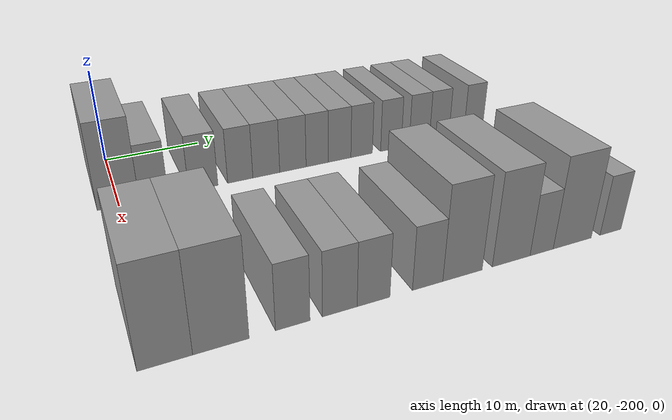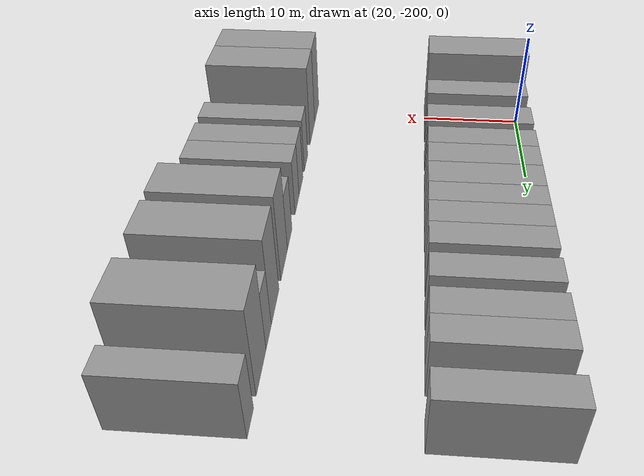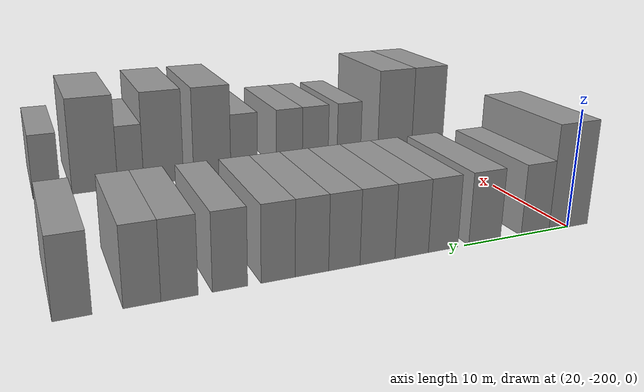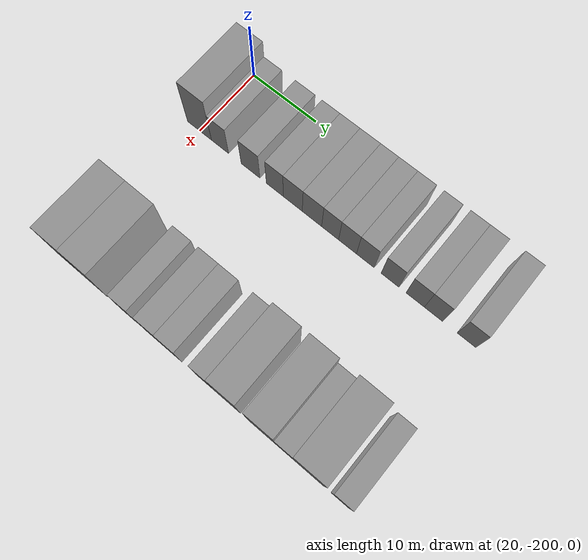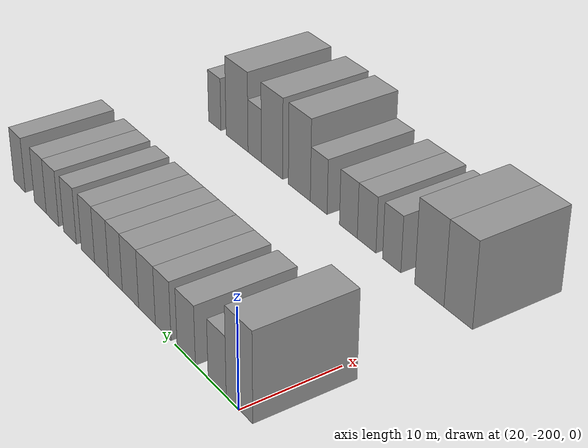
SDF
<sdf version="1.6">
 <world name="default">
  <model name="building_1">
   <static>1</static>
   <pose>25.0000 -200.0431 0 0.000000 0.000000 0.000000</pose>
   <link name="link">
    <pose>0 0 4.50 0 0 0</pose>
    <collision name="collision"><geometry><box><size>10.0000 3.9137 9.0000</size></box></geometry></collision>
    <visual name="visual">
     <cast_shadows>0</cast_shadows>
     <geometry><box><size>10.0000 3.9137 9.0000</size></box></geometry>
     <material>
      <script>
       <uri>model://grey_wall/materials/scripts</uri>
       <uri>model://grey_wall/materials/textures</uri>
       <name>vrc/grey_wall</name>
      </script>
     </material>
    </visual>
   </link>
  </model>
  <model name="building_2">
   <static>1</static>
   <pose>25.0000 -196.7073 0 0.000000 0.000000 0.000000</pose>
   <link name="link">
    <pose>0 0 3.00 0 0 0</pose>
    <collision name="collision"><geometry><box><size>10.0000 2.7580 6.0000</size></box></geometry></collision>
    <visual name="visual">
     <cast_shadows>0</cast_shadows>
     <geometry><box><size>10.0000 2.7580 6.0000</size></box></geometry>
     <material>
      <script>
       <uri>model://grey_wall/materials/scripts</uri>
       <uri>model://grey_wall/materials/textures</uri>
       <name>vrc/grey_wall</name>
      </script>
     </material>
    </visual>
   </link>
  </model>
  <model name="building_3">
   <static>1</static>
   <pose>25.0000 -191.8505 0 0.000000 0.000000 0.000000</pose>
   <link name="link">
    <pose>0 0 3.00 0 0 0</pose>
    <collision name="collision"><geometry><box><size>10.0000 2.9555 6.0000</size></box></geometry></collision>
    <visual name="visual">
     <cast_shadows>0</cast_shadows>
     <geometry><box><size>10.0000 2.9555 6.0000</size></box></geometry>
     <material>
      <script>
       <uri>model://grey_wall/materials/scripts</uri>
       <uri>model://grey_wall/materials/textures</uri>
       <name>vrc/grey_wall</name>
      </script>
     </material>
    </visual>
   </link>
  </model>
  <model name="building_4">
   <static>1</static>
   <pose>25.0000 -188.0546 0 0.000000 0.000000 0.000000</pose>
   <link name="link">
    <pose>0 0 3.00 0 0 0</pose>
    <collision name="collision"><geometry><box><size>10.0000 2.6365 6.0000</size></box></geometry></collision>
    <visual name="visual">
     <cast_shadows>0</cast_shadows>
     <geometry><box><size>10.0000 2.6365 6.0000</size></box></geometry>
     <material>
      <script>
       <uri>model://grey_wall/materials/scripts</uri>
       <uri>model://grey_wall/materials/textures</uri>
       <name>vrc/grey_wall</name>
      </script>
     </material>
    </visual>
   </link>
  </model>
  <model name="building_5">
   <static>1</static>
   <pose>25.0000 -185.2900 0 0.000000 0.000000 0.000000</pose>
   <link name="link">
    <pose>0 0 3.00 0 0 0</pose>
    <collision name="collision"><geometry><box><size>10.0000 2.8927 6.0000</size></box></geometry></collision>
    <visual name="visual">
     <cast_shadows>0</cast_shadows>
     <geometry><box><size>10.0000 2.8927 6.0000</size></box></geometry>
     <material>
      <script>
       <uri>model://grey_wall/materials/scripts</uri>
       <uri>model://grey_wall/materials/textures</uri>
       <name>vrc/grey_wall</name>
      </script>
     </material>
    </visual>
   </link>
  </model>
  <model name="building_6">
   <static>1</static>
   <pose>25.0000 -182.3802 0 0.000000 0.000000 0.000000</pose>
   <link name="link">
    <pose>0 0 3.00 0 0 0</pose>
    <collision name="collision"><geometry><box><size>10.0000 2.9268 6.0000</size></box></geometry></collision>
    <visual name="visual">
     <cast_shadows>0</cast_shadows>
     <geometry><box><size>10.0000 2.9268 6.0000</size></box></geometry>
     <material>
      <script>
       <uri>model://grey_wall/materials/scripts</uri>
       <uri>model://grey_wall/materials/textures</uri>
       <name>vrc/grey_wall</name>
      </script>
     </material>
    </visual>
   </link>
  </model>
  <model name="building_7">
   <static>1</static>
   <pose>25.0000 -179.6508 0 0.000000 0.000000 0.000000</pose>
   <link name="link">
    <pose>0 0 3.00 0 0 0</pose>
    <collision name="collision"><geometry><box><size>10.0000 2.5320 6.0000</size></box></geometry></collision>
    <visual name="visual">
     <cast_shadows>0</cast_shadows>
     <geometry><box><size>10.0000 2.5320 6.0000</size></box></geometry>
     <material>
      <script>
       <uri>model://grey_wall/materials/scripts</uri>
       <uri>model://grey_wall/materials/textures</uri>
       <name>vrc/grey_wall</name>
      </script>
     </material>
    </visual>
   </link>
  </model>
  <model name="building_8">
   <static>1</static>
   <pose>25.0000 -177.0673 0 0.000000 0.000000 0.000000</pose>
   <link name="link">
    <pose>0 0 3.00 0 0 0</pose>
    <collision name="collision"><geometry><box><size>10.0000 2.6349 6.0000</size></box></geometry></collision>
    <visual name="visual">
     <cast_shadows>0</cast_shadows>
     <geometry><box><size>10.0000 2.6349 6.0000</size></box></geometry>
     <material>
      <script>
       <uri>model://grey_wall/materials/scripts</uri>
       <uri>model://grey_wall/materials/textures</uri>
       <name>vrc/grey_wall</name>
      </script>
     </material>
    </visual>
   </link>
  </model>
  <model name="building_9">
   <static>1</static>
   <pose>25.0000 -174.4618 0 0.000000 0.000000 0.000000</pose>
   <link name="link">
    <pose>0 0 3.00 0 0 0</pose>
    <collision name="collision"><geometry><box><size>10.0000 2.5761 6.0000</size></box></geometry></collision>
    <visual name="visual">
     <cast_shadows>0</cast_shadows>
     <geometry><box><size>10.0000 2.5761 6.0000</size></box></geometry>
     <material>
      <script>
       <uri>model://grey_wall/materials/scripts</uri>
       <uri>model://grey_wall/materials/textures</uri>
       <name>vrc/grey_wall</name>
      </script>
     </material>
    </visual>
   </link>
  </model>
  <model name="building_10">
   <static>1</static>
   <pose>25.0000 -170.8962 0 0.000000 0.000000 0.000000</pose>
   <link name="link">
    <pose>0 0 3.00 0 0 0</pose>
    <collision name="collision"><geometry><box><size>10.0000 2.5550 6.0000</size></box></geometry></collision>
    <visual name="visual">
     <cast_shadows>0</cast_shadows>
     <geometry><box><size>10.0000 2.5550 6.0000</size></box></geometry>
     <material>
      <script>
       <uri>model://grey_wall/materials/scripts</uri>
       <uri>model://grey_wall/materials/textures</uri>
       <name>vrc/grey_wall</name>
      </script>
     </material>
    </visual>
   </link>
  </model>
  <model name="building_11">
   <static>1</static>
   <pose>25.0000 -167.3284 0 0.000000 0.000000 0.000000</pose>
   <link name="link">
    <pose>0 0 3.00 0 0 0</pose>
    <collision name="collision"><geometry><box><size>10.0000 2.5806 6.0000</size></box></geometry></collision>
    <visual name="visual">
     <cast_shadows>0</cast_shadows>
     <geometry><box><size>10.0000 2.5806 6.0000</size></box></geometry>
     <material>
      <script>
       <uri>model://grey_wall/materials/scripts</uri>
       <uri>model://grey_wall/materials/textures</uri>
       <name>vrc/grey_wall</name>
      </script>
     </material>
    </visual>
   </link>
  </model>
  <model name="building_12">
   <static>1</static>
   <pose>25.0000 -164.7689 0 0.000000 0.000000 0.000000</pose>
   <link name="link">
    <pose>0 0 3.00 0 0 0</pose>
    <collision name="collision"><geometry><box><size>10.0000 2.5385 6.0000</size></box></geometry></collision>
    <visual name="visual">
     <cast_shadows>0</cast_shadows>
     <geometry><box><size>10.0000 2.5385 6.0000</size></box></geometry>
     <material>
      <script>
       <uri>model://grey_wall/materials/scripts</uri>
       <uri>model://grey_wall/materials/textures</uri>
       <name>vrc/grey_wall</name>
      </script>
     </material>
    </visual>
   </link>
  </model>
  <model name="building_13">
   <static>1</static>
   <pose>25.0000 -160.2340 0 0.000000 0.000000 0.000000</pose>
   <link name="link">
    <pose>0 0 3.00 0 0 0</pose>
    <collision name="collision"><geometry><box><size>10.0000 2.5311 6.0000</size></box></geometry></collision>
    <visual name="visual">
     <cast_shadows>0</cast_shadows>
     <geometry><box><size>10.0000 2.5311 6.0000</size></box></geometry>
     <material>
      <script>
       <uri>model://grey_wall/materials/scripts</uri>
       <uri>model://grey_wall/materials/textures</uri>
       <name>vrc/grey_wall</name>
      </script>
     </material>
    </visual>
   </link>
  </model>
  <model name="building_97">
   <static>1</static>
   <pose>47.0000 -200.0806 0 0.000000 0.000000 0.000000</pose>
   <link name="link">
    <pose>0 0 4.50 0 0 0</pose>
    <collision name="collision"><geometry><box><size>10.0000 3.8388 9.0000</size></box></geometry></collision>
    <visual name="visual">
     <cast_shadows>0</cast_shadows>
     <geometry><box><size>10.0000 3.8388 9.0000</size></box></geometry>
     <material>
      <script>
       <uri>model://grey_wall/materials/scripts</uri>
       <uri>model://grey_wall/materials/textures</uri>
       <name>vrc/grey_wall</name>
      </script>
     </material>
    </visual>
   </link>
  </model>
  <model name="building_98">
   <static>1</static>
   <pose>47.0000 -196.1073 0 0.000000 0.000000 0.000000</pose>
   <link name="link">
    <pose>0 0 4.50 0 0 0</pose>
    <collision name="collision"><geometry><box><size>10.0000 4.1078 9.0000</size></box></geometry></collision>
    <visual name="visual">
     <cast_shadows>0</cast_shadows>
     <geometry><box><size>10.0000 4.1078 9.0000</size></box></geometry>
     <material>
      <script>
       <uri>model://grey_wall/materials/scripts</uri>
       <uri>model://grey_wall/materials/textures</uri>
       <name>vrc/grey_wall</name>
      </script>
     </material>
    </visual>
   </link>
  </model>
  <model name="building_99">
   <static>1</static>
   <pose>47.0000 -190.6954 0 0.000000 0.000000 0.000000</pose>
   <link name="link">
    <pose>0 0 3.00 0 0 0</pose>
    <collision name="collision"><geometry><box><size>10.0000 2.7160 6.0000</size></box></geometry></collision>
    <visual name="visual">
     <cast_shadows>0</cast_shadows>
     <geometry><box><size>10.0000 2.7160 6.0000</size></box></geometry>
     <material>
      <script>
       <uri>model://grey_wall/materials/scripts</uri>
       <uri>model://grey_wall/materials/textures</uri>
       <name>vrc/grey_wall</name>
      </script>
     </material>
    </visual>
   </link>
  </model>
  <model name="building_100">
   <static>1</static>
   <pose>47.0000 -186.9008 0 0.000000 0.000000 0.000000</pose>
   <link name="link">
    <pose>0 0 3.00 0 0 0</pose>
    <collision name="collision"><geometry><box><size>10.0000 2.8733 6.0000</size></box></geometry></collision>
    <visual name="visual">
     <cast_shadows>0</cast_shadows>
     <geometry><box><size>10.0000 2.8733 6.0000</size></box></geometry>
     <material>
      <script>
       <uri>model://grey_wall/materials/scripts</uri>
       <uri>model://grey_wall/materials/textures</uri>
       <name>vrc/grey_wall</name>
      </script>
     </material>
    </visual>
   </link>
  </model>
  <model name="building_101">
   <static>1</static>
   <pose>47.0000 -184.0516 0 0.000000 0.000000 0.000000</pose>
   <link name="link">
    <pose>0 0 3.00 0 0 0</pose>
    <collision name="collision"><geometry><box><size>10.0000 2.8251 6.0000</size></box></geometry></collision>
    <visual name="visual">
     <cast_shadows>0</cast_shadows>
     <geometry><box><size>10.0000 2.8251 6.0000</size></box></geometry>
     <material>
      <script>
       <uri>model://grey_wall/materials/scripts</uri>
       <uri>model://grey_wall/materials/textures</uri>
       <name>vrc/grey_wall</name>
      </script>
     </material>
    </visual>
   </link>
  </model>
  <model name="building_102">
   <static>1</static>
   <pose>47.0000 -179.2477 0 0.000000 0.000000 0.000000</pose>
   <link name="link">
    <pose>0 0 3.00 0 0 0</pose>
    <collision name="collision"><geometry><box><size>10.0000 2.7829 6.0000</size></box></geometry></collision>
    <visual name="visual">
     <cast_shadows>0</cast_shadows>
     <geometry><box><size>10.0000 2.7829 6.0000</size></box></geometry>
     <material>
      <script>
       <uri>model://grey_wall/materials/scripts</uri>
       <uri>model://grey_wall/materials/textures</uri>
       <name>vrc/grey_wall</name>
      </script>
     </material>
    </visual>
   </link>
  </model>
  <model name="building_103">
   <static>1</static>
   <pose>47.0000 -175.9766 0 0.000000 0.000000 0.000000</pose>
   <link name="link">
    <pose>0 0 4.50 0 0 0</pose>
    <collision name="collision"><geometry><box><size>10.0000 3.7591 9.0000</size></box></geometry></collision>
    <visual name="visual">
     <cast_shadows>0</cast_shadows>
     <geometry><box><size>10.0000 3.7591 9.0000</size></box></geometry>
     <material>
      <script>
       <uri>model://grey_wall/materials/scripts</uri>
       <uri>model://grey_wall/materials/textures</uri>
       <name>vrc/grey_wall</name>
      </script>
     </material>
    </visual>
   </link>
  </model>
  <model name="building_104">
   <static>1</static>
   <pose>47.0000 -171.1786 0 0.000000 0.000000 0.000000</pose>
   <link name="link">
    <pose>0 0 4.50 0 0 0</pose>
    <collision name="collision"><geometry><box><size>10.0000 3.8370 9.0000</size></box></geometry></collision>
    <visual name="visual">
     <cast_shadows>0</cast_shadows>
     <geometry><box><size>10.0000 3.8370 9.0000</size></box></geometry>
     <material>
      <script>
       <uri>model://grey_wall/materials/scripts</uri>
       <uri>model://grey_wall/materials/textures</uri>
       <name>vrc/grey_wall</name>
      </script>
     </material>
    </visual>
   </link>
  </model>
  <model name="building_105">
   <static>1</static>
   <pose>47.0000 -168.0388 0 0.000000 0.000000 0.000000</pose>
   <link name="link">
    <pose>0 0 3.00 0 0 0</pose>
    <collision name="collision"><geometry><box><size>10.0000 2.4425 6.0000</size></box></geometry></collision>
    <visual name="visual">
     <cast_shadows>0</cast_shadows>
     <geometry><box><size>10.0000 2.4425 6.0000</size></box></geometry>
     <material>
      <script>
       <uri>model://grey_wall/materials/scripts</uri>
       <uri>model://grey_wall/materials/textures</uri>
       <name>vrc/grey_wall</name>
      </script>
     </material>
    </visual>
   </link>
  </model>
  <model name="building_106">
   <static>1</static>
   <pose>47.0000 -164.7337 0 0.000000 0.000000 0.000000</pose>
   <link name="link">
    <pose>0 0 4.50 0 0 0</pose>
    <collision name="collision"><geometry><box><size>10.0000 4.1676 9.0000</size></box></geometry></collision>
    <visual name="visual">
     <cast_shadows>0</cast_shadows>
     <geometry><box><size>10.0000 4.1676 9.0000</size></box></geometry>
     <material>
      <script>
       <uri>model://grey_wall/materials/scripts</uri>
       <uri>model://grey_wall/materials/textures</uri>
       <name>vrc/grey_wall</name>
      </script>
     </material>
    </visual>
   </link>
  </model>
  <model name="building_107">
   <static>1</static>
   <pose>47.0000 -160.4396 0 0.000000 0.000000 0.000000</pose>
   <link name="link">
    <pose>0 0 3.00 0 0 0</pose>
    <collision name="collision"><geometry><box><size>10.0000 2.4206 6.0000</size></box></geometry></collision>
    <visual name="visual">
     <cast_shadows>0</cast_shadows>
     <geometry><box><size>10.0000 2.4206 6.0000</size></box></geometry>
     <material>
      <script>
       <uri>model://grey_wall/materials/scripts</uri>
       <uri>model://grey_wall/materials/textures</uri>
       <name>vrc/grey_wall</name>
      </script>
     </material>
    </visual>
   </link>
  </model>
 </world>
</sdf>
